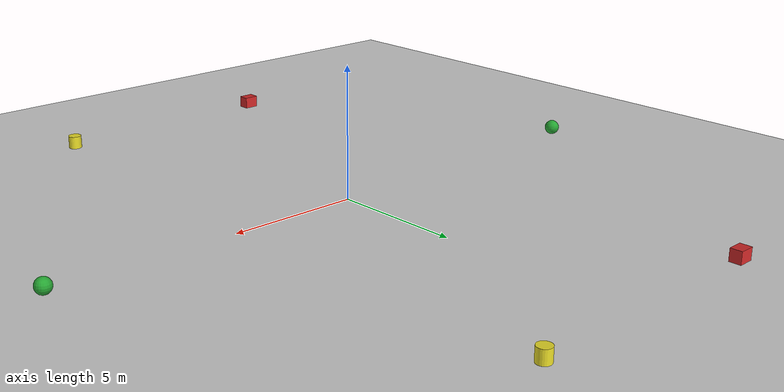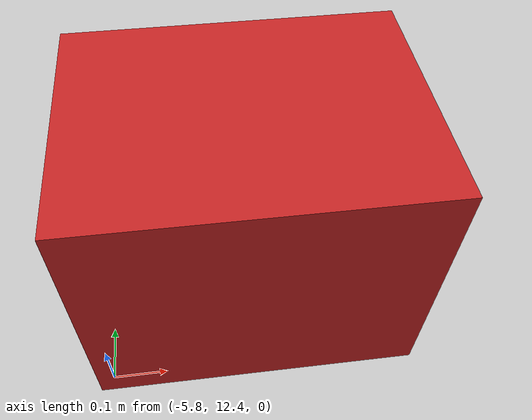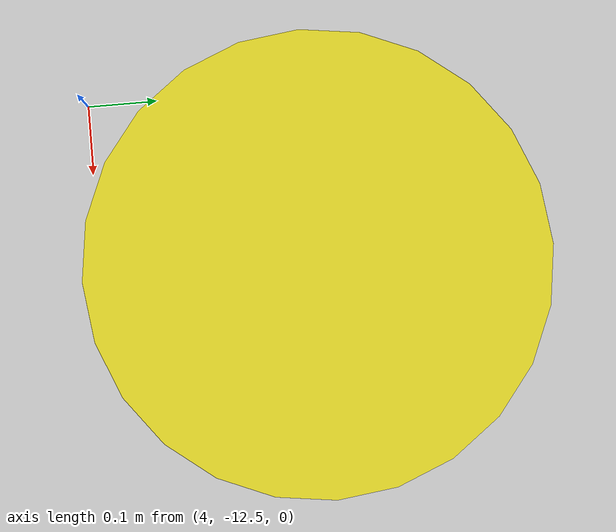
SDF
<sdf version="1.7">
 <world name="default">
  <light name="sun" type="directional">
   <pose>0 0 10 0 -0 0</pose>
   <diffuse>0.8 0.8 0.8 1</diffuse>
   <specular>0.2 0.2 0.2 1</specular>
   <attenuation>
    <range>1000</range>
    <constant>0.9</constant>
    <linear>0.01</linear>
    <quadratic>0.001</quadratic>
   </attenuation>
   <direction>-0.5 0.1 -0.9</direction>
   <spot><inner_angle>0</inner_angle><outer_angle>0</outer_angle><falloff>0</falloff></spot>
  </light>
  <model name="ground_plane">
   <static>1</static>
   <link name="link">
    <collision name="collision">
     <geometry><plane><normal>0 0 1</normal><size>100 100</size></plane></geometry>
     <surface>
      <contact><collide_bitmask>65535</collide_bitmask></contact>
      <friction><ode><mu>100</mu><mu2>50</mu2></ode></friction>
     </surface>
    </collision>
    <visual name="visual">
     <cast_shadows>0</cast_shadows>
     <geometry><plane><normal>0 0 1</normal><size>100 100</size></plane></geometry>
     <material>
      <script><uri>file://media/materials/scripts/gazebo.material</uri><name>Gazebo/Grey</name></script>
     </material>
    </visual>
   </link>
  </model>
  <gravity>0 0 -9.8</gravity>
  <magnetic_field>6e-06 2.3e-05 -4.2e-05</magnetic_field>
  <atmosphere type="adiabatic"/>
  <physics type="ode">
   <max_step_size>0.001</max_step_size>
   <real_time_factor>1</real_time_factor>
   <real_time_update_rate>1000</real_time_update_rate>
  </physics>
  <scene><ambient>0.4 0.4 0.4 1</ambient><background>0.7 0.7 0.7 1</background><shadows>1</shadows></scene>
  <audio><device>default</device></audio>
  <spherical_coordinates>
   <surface_model>EARTH_WGS84</surface_model>
   <latitude_deg>0</latitude_deg>
   <longitude_deg>0</longitude_deg>
   <elevation>0</elevation>
   <heading_deg>0</heading_deg>
  </spherical_coordinates>
  <model name="unit_box_clone">
   <pose>-4.77247 -12.3671 0.237405 0 -0 0.000125</pose>
   <link name="link">
    <inertial>
     <mass>1</mass>
     <inertia>
      <ixx>0.166667</ixx>
      <ixy>0</ixy>
      <ixz>0</ixz>
      <iyy>0.166667</iyy>
      <iyz>0</iyz>
      <izz>0.166667</izz>
     </inertia>
    </inertial>
    <collision name="collision"><geometry><box><size>0.591667 0.447543 0.47481</size></box></geometry></collision>
    <visual name="visual">
     <geometry><box><size>0.591667 0.447543 0.47481</size></box></geometry>
     <material>
      <script><name>Gazebo/Red</name><uri>file://media/materials/scripts/gazebo.material</uri></script>
     </material>
    </visual>
   </link>
  </model>
  <model name="unit_cylinder_clone">
   <pose>4.2801 -12.1968 0.251602 0 -0 0</pose>
   <link name="link">
    <inertial>
     <mass>1</mass>
     <inertia><ixx>0.145833</ixx><ixy>0</ixy><ixz>0</ixz><iyy>0.145833</iyy><iyz>0</iyz><izz>0.125</izz></inertia>
    </inertial>
    <collision name="collision">
     <geometry><cylinder><radius>0.255899</radius><length>0.50321</length></cylinder></geometry>
    </collision>
    <visual name="visual">
     <geometry><cylinder><radius>0.255899</radius><length>0.50321</length></cylinder></geometry>
     <material>
      <script><name>Gazebo/Yellow</name><uri>file://media/materials/scripts/gazebo.material</uri></script>
     </material>
    </visual>
   </link>
  </model>
  <model name="unit_sphere_clone">
   <pose>12.0908 0.008556 0.291192 0 -0 0</pose>
   <link name="link">
    <inertial>
     <mass>1</mass>
     <inertia><ixx>0.1</ixx><ixy>0</ixy><ixz>0</ixz><iyy>0.1</iyy><iyz>0</iyz><izz>0.1</izz></inertia>
    </inertial>
    <collision name="collision"><geometry><sphere><radius>0.291192</radius></sphere></geometry></collision>
    <visual name="visual">
     <geometry><sphere><radius>0.291192</radius></sphere></geometry>
     <material>
      <script><name>Gazebo/Green</name><uri>file://media/materials/scripts/gazebo.material</uri></script>
     </material>
    </visual>
   </link>
  </model>
  <model name="unit_sphere_clone_clone_4">
   <pose>-11.8348 -0.174521 0.291192 0 -0 0</pose>
   <link name="link">
    <inertial>
     <mass>1</mass>
     <inertia><ixx>0.1</ixx><ixy>0</ixy><ixz>0</ixz><iyy>0.1</iyy><iyz>0</iyz><izz>0.1</izz></inertia>
    </inertial>
    <collision name="collision"><geometry><sphere><radius>0.291192</radius></sphere></geometry></collision>
    <visual name="visual">
     <geometry><sphere><radius>0.291192</radius></sphere></geometry>
     <material>
      <script><name>Gazebo/Green</name><uri>file://media/materials/scripts/gazebo.material</uri></script>
     </material>
    </visual>
   </link>
  </model>
  <model name="unit_cylinder_clone_clone">
   <pose>4.30075 12.6943 0.251598 0 -0 0</pose>
   <link name="link">
    <inertial>
     <mass>1</mass>
     <inertia><ixx>0.145833</ixx><ixy>0</ixy><ixz>0</ixz><iyy>0.145833</iyy><iyz>0</iyz><izz>0.125</izz></inertia>
    </inertial>
    <collision name="collision">
     <geometry><cylinder><radius>0.255899</radius><length>0.50321</length></cylinder></geometry>
    </collision>
    <visual name="visual">
     <geometry><cylinder><radius>0.255899</radius><length>0.50321</length></cylinder></geometry>
     <material>
      <script><name>Gazebo/Yellow</name><uri>file://media/materials/scripts/gazebo.material</uri></script>
     </material>
    </visual>
   </link>
  </model>
  <model name="unit_box_clone_clone">
   <pose>-5.52667 12.6008 0.237405 0 -0 0.000125</pose>
   <link name="link">
    <inertial>
     <mass>1</mass>
     <inertia>
      <ixx>0.166667</ixx>
      <ixy>0</ixy>
      <ixz>0</ixz>
      <iyy>0.166667</iyy>
      <iyz>0</iyz>
      <izz>0.166667</izz>
     </inertia>
    </inertial>
    <collision name="collision"><geometry><box><size>0.591667 0.447543 0.47481</size></box></geometry></collision>
    <visual name="visual">
     <geometry><box><size>0.591667 0.447543 0.47481</size></box></geometry>
     <material>
      <script><name>Gazebo/Red</name><uri>file://media/materials/scripts/gazebo.material</uri></script>
     </material>
    </visual>
   </link>
  </model>
 </world>
</sdf>
